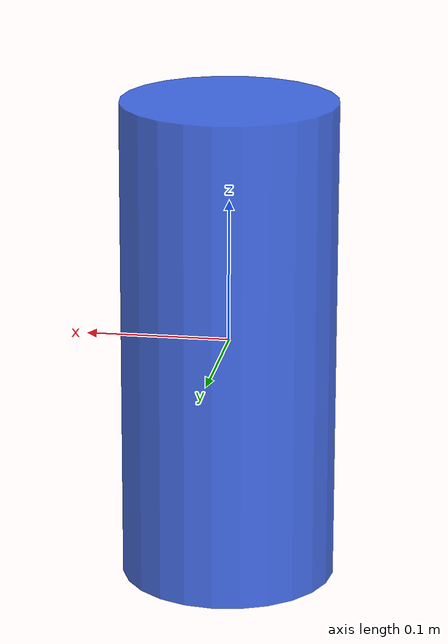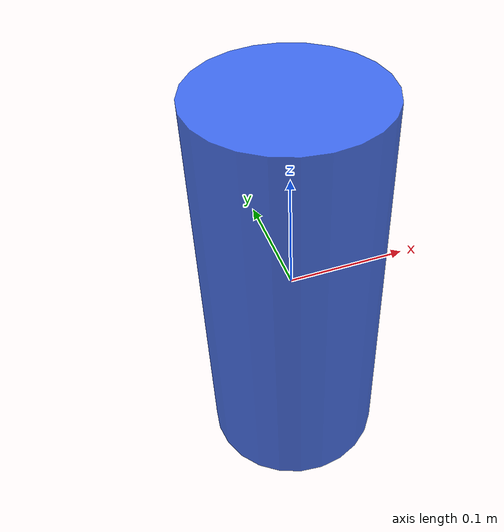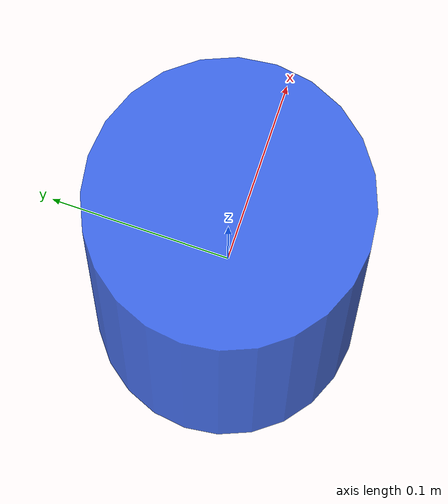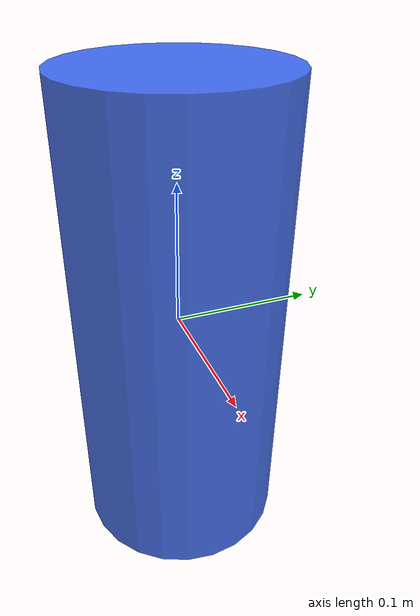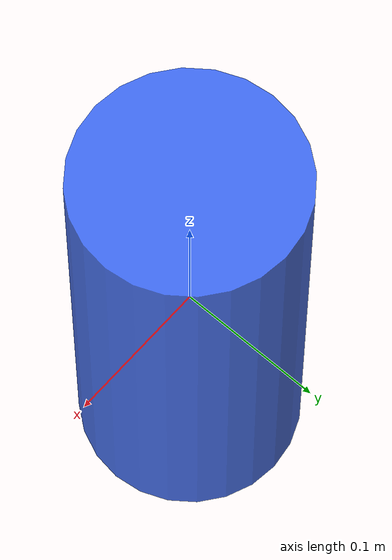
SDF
<?xml version="1.0"?>
<sdf version="1.9">
  <model name="cylinder_r075_h034_static">
    <static>true</static>
    <link name="body">
      <gravity>false</gravity>
      <inertial>
        <mass>1.0</mass>
        <inertia>
          <ixx>0.011267</ixx>
          <iyy>0.011267</iyy>
          <izz>0.002813</izz>
          <ixy>0</ixy>
          <ixz>0</ixz>
          <iyz>0</iyz>
        </inertia>
      </inertial>
      <collision name="collision">
        <geometry>
          <cylinder>
            <radius>0.075</radius>
            <length>0.34</length>
          </cylinder>
        </geometry>
        <surface>
          <friction>
            <ode>
              <mu>1.0</mu>
              <mu2>1.0</mu2>
            </ode>
          </friction>
          <bounce>
            <restitution_coefficient>0.0</restitution_coefficient>
          </bounce>
        </surface>
      </collision>
      <visual name="visual">
        <geometry>
          <cylinder>
            <radius>0.075</radius>
            <length>0.34</length>
          </cylinder>
        </geometry>
        <material>
          <ambient>0.15 0.35 0.95 0.85</ambient>
          <diffuse>0.15 0.35 0.95 0.85</diffuse>
        </material>
      </visual>
    </link>
  </model>
</sdf>
